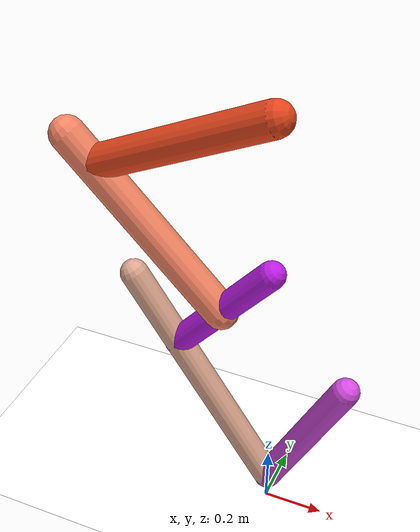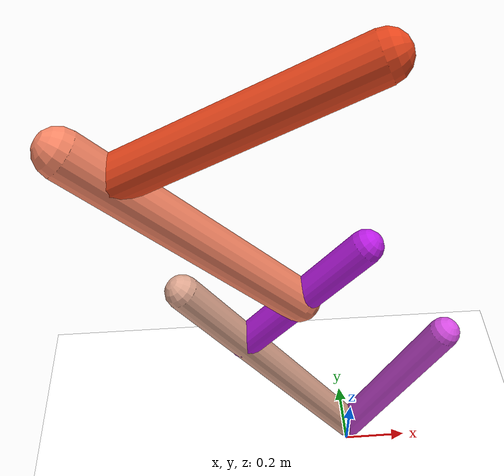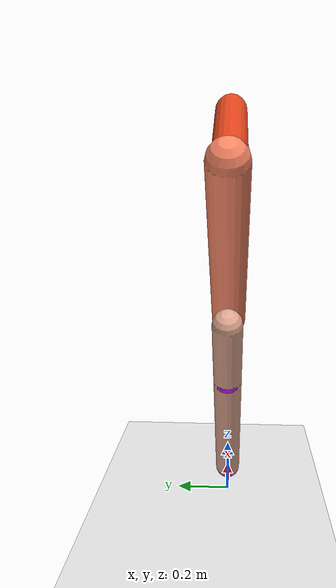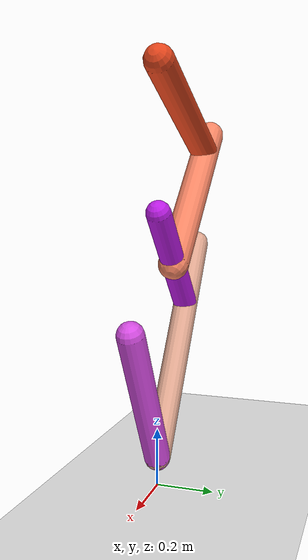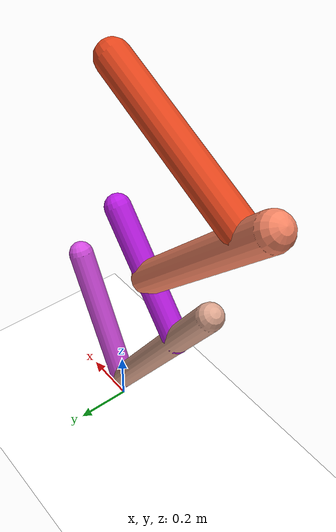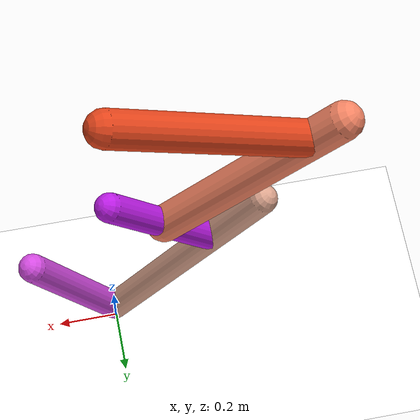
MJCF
<mujoco model="morphology">
  <option timestep="0.01"/>
  <default>
    <default class="/"/>
  </default>
  <asset>
    <texture name="texplane" type="2d" builtin="checker" rgb1="0.1 0.2 0.3" rgb2="0.2 0.3 0.4" width="300" height="300"/>
    <material name="MatPlane" class="/" texture="texplane" texrepeat="20 20" specular="1" shininess="1" reflectance="0.5"/>
  </asset>
  <worldbody>
    <light name="//unnamed_light_0" class="/" directional="true" pos="0 0 1.5" dir="0 0 -1.3" cutoff="1e+02" exponent="1" diffuse="1 1 1" specular="0.1 0.1 0.1"/>
    <geom name="ground" class="/" type="plane" size="15 15 0.5" material="MatPlane" rgba="1 1 1 1"/>
    <body name="body" pos="0 0 0.1">
      <geom name="geom0" class="/" type="capsule" contype="1" conaffinity="1" condim="3" size="0.046" rgba="0.84 0.3 0.89 1" friction="0.4 0.1 0.1" fromto="0 0 0 0.24 0 0.48"/>
      <body name="body1" pos="0.00035 0 0.00069">
        <geom name="geom1" class="/" type="capsule" contype="1" conaffinity="1" condim="3" size="0.046" rgba="0.87 0.65 0.56 1" friction="0.4 0.1 0.1" fromto="0 0 0 -0.48 0 0.72"/>
        <body name="body2" pos="-0.33 0 0.49">
          <geom name="geom2" class="/" type="capsule" contype="1" conaffinity="1" condim="3" size="0.045" rgba="0.74 0.11 0.9 1" friction="0.4 0.1 0.1" fromto="0 0 0 0.31 0 0.36"/>
          <body name="body3" pos="0.15 0 0.17">
            <geom name="geom3" class="/" type="capsule" contype="1" conaffinity="1" condim="3" size="0.057" rgba="0.96 0.52 0.39 1" friction="0.4 0.1 0.1" fromto="0 0 0 -0.5 0 0.51"/>
            <body name="body4" pos="-0.42 0 0.43">
              <geom name="geom4" class="/" type="capsule" contype="1" conaffinity="1" condim="3" size="0.055" rgba="0.89 0.27 0.11 1" friction="0.4 0.1 0.1" fromto="0 0 0 0.57 0 0.27"/>
              <joint name="joint4" class="/" type="hinge" axis="0 1 0" limited="true" stiffness="20" range="-31 31" armature="0.1" damping="2"/>
            </body>
            <joint name="joint3" class="/" type="hinge" axis="0 1 0" limited="true" stiffness="20" range="-46 46" armature="0.1" damping="2"/>
          </body>
          <joint name="joint2" class="/" type="hinge" axis="0 1 0" limited="true" stiffness="20" range="-31 31" armature="0.1" damping="2"/>
        </body>
        <joint name="joint1" class="/" type="hinge" axis="0 1 0" limited="true" stiffness="20" range="-44 44" armature="0.1" damping="2"/>
      </body>
      <joint name="rootx" class="/" type="slide" axis="1 0 0" limited="false" stiffness="0" armature="0" damping="0"/>
      <joint name="rootz" class="/" type="slide" axis="0 0 1" limited="false" stiffness="0" armature="0" damping="0"/>
      <joint name="rooty" class="/" type="hinge" axis="0 1 0" limited="false" stiffness="0" armature="0" damping="0"/>
    </body>
  </worldbody>
  <actuator>
    <motor name="motor4" class="/" ctrllimited="true" ctrlrange="-1 1" gear="1.7e+02" joint="joint4"/>
    <motor name="motor3" class="/" ctrllimited="true" ctrlrange="-1 1" gear="1.7e+02" joint="joint3"/>
    <motor name="motor2" class="/" ctrllimited="true" ctrlrange="-1 1" gear="1.5e+02" joint="joint2"/>
    <motor name="motor1" class="/" ctrllimited="true" ctrlrange="-1 1" gear="1.6e+02" joint="joint1"/>
  </actuator>
  <sensor>
    <subtreelinvel name="velocity" body="body"/>
  </sensor>
</mujoco>
